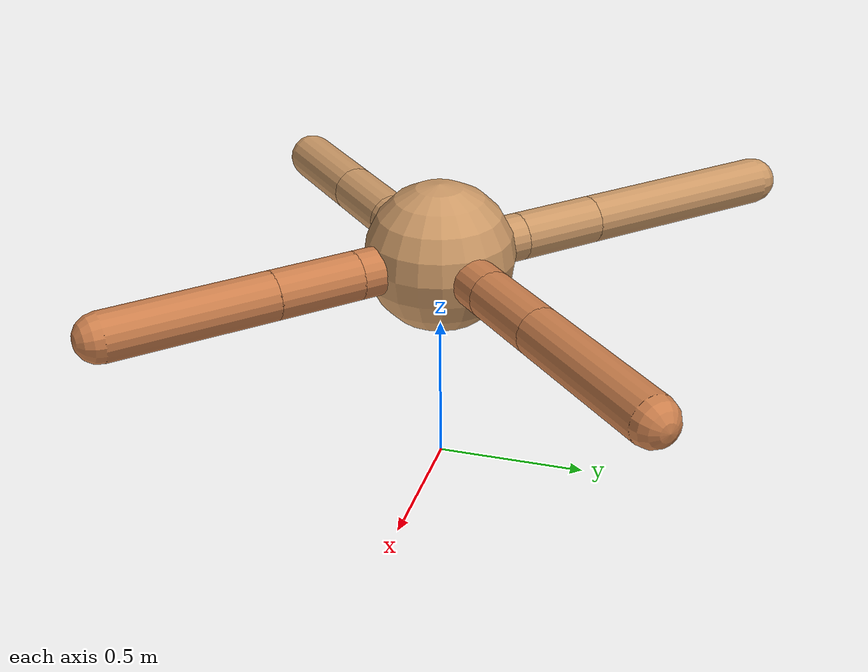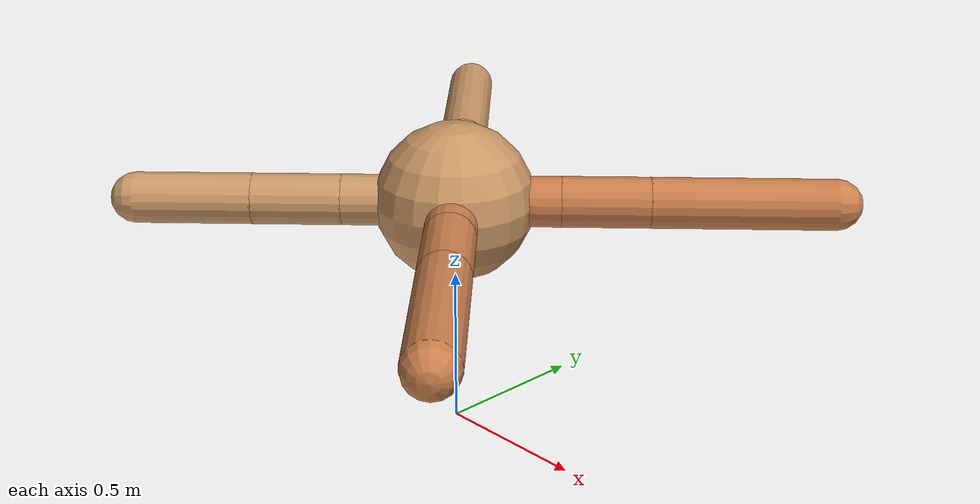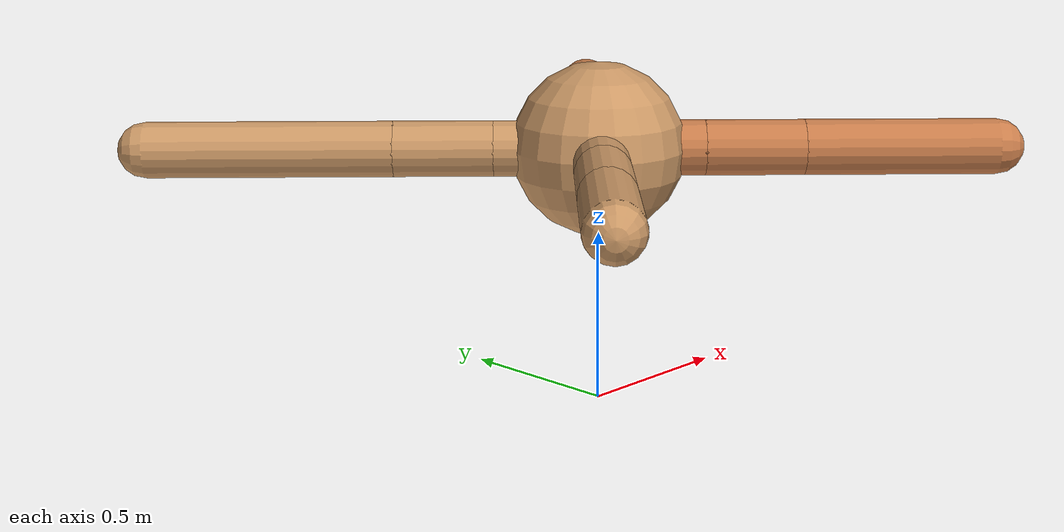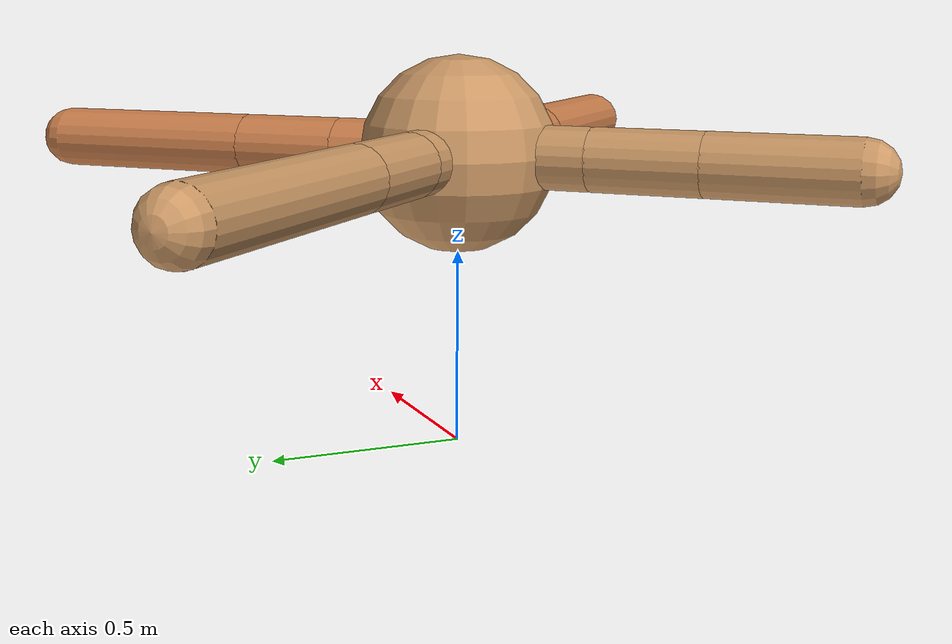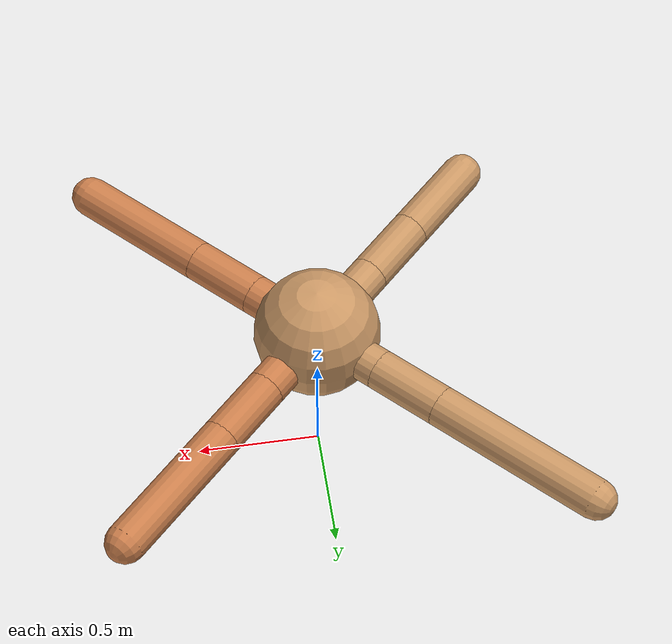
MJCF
<mujoco model="ant">
  <compiler angle="degree" coordinate="local" inertiafromgeom="true" />
  <option integrator="RK4" timestep="0.01" />
  <custom>
    <numeric data="0.0 0.0 0.55 1.0 0.0 0.0 0.0 0.0 1.0 0.0 -1.0 0.0 -1.0 0.0 1.0" name="init_qpos" />
  </custom>
  <default>
    <joint armature="1" damping="1" limited="true" />
    <geom conaffinity="0" condim="3" density="5.0" friction="1.5 0.1 0.1" margin="0.01" rgba="0.8 0.6 0.4 1" />
  </default>
  <worldbody>
    <body name="torso" pos="0 0 0.75">
      <geom name="torso_geom" pos="0 0 0" size="0.25" type="sphere" />

      <body name="front_left_leg" pos="0 0 0">
        <geom fromto="0.0 0.0 0.0 0.2336927871128403 0.2336927871128403 0.0" name="aux_1_geom" size="0.08" type="capsule" rgba=".8 .5 .3 1" />
        <body name="aux_1" pos="0.2336927871128403 0.2336927871128403 0.0">
          <joint axis="0 0 1" name="hip_1" pos="0.0 0.0 0.0" range="-40 40" type="hinge" />
          <geom fromto="0.0 0.0 0.0 0.1950455028914145 0.1950455028914145 0.0" name="left_leg_geom" size="0.08" type="capsule" rgba=".8 .5 .3 1" />
          <body pos="0.1950455028914145 0.1950455028914145 0.0" name="front_left_foot">
            <joint axis="-1 1 0" name="ankle_1" pos="0.0 0.0 0.0" range="30 100" type="hinge" />
            <geom fromto="0.0 0.0 0.0 0.40526340655103904 0.40526340655103904 0.0" name="left_ankle_geom" size="0.08" type="capsule" rgba=".8 .5 .3 1" />
          </body>
        </body>
      </body>
      <body name="front_right_leg" pos="0 0 0">
        <geom fromto="0.0 0.0 0.0 -0.21293554628785238 0.21293554628785238 0.0" name="aux_2_geom" size="0.08" type="capsule" />
        <body name="aux_2" pos="-0.21293554628785238 0.21293554628785238 0.0">
          <joint axis="0 0 1" name="hip_2" pos="0.0 0.0 0.0" range="-40 40" type="hinge" />
          <geom fromto="0.0 0.0 0.0 -0.20142083036353645 0.20142083036353645 0.0" name="right_leg_geom" size="0.08" type="capsule" />
          <body pos="-0.20142083036353645 0.20142083036353645 0.0" name="front_right_foot">
            <joint axis="1 1 0" name="ankle_2" pos="0.0 0.0 0.0" range="-100 -30" type="hinge" />
            <geom fromto="0.0 0.0 0.0 -0.49786892822900947 0.49786892822900947 0.0" name="right_ankle_geom" size="0.08" type="capsule" />
          </body>
        </body>
      </body>
      <body name="left_back_leg" pos="0 0 0">
        <geom fromto="0.0 0.0 0.0 -0.24763061849911072 -0.24763061849911072 0.0" name="aux_3_geom" size="0.08" type="capsule" />
        <body name="aux_3" pos="-0.24763061849911072 -0.24763061849911072 0.0">
          <joint axis="0 0 1" name="hip_3" pos="0.0 0.0 0.0" range="-40 40" type="hinge" />
          <geom fromto="0.0 0.0 0.0 -0.19669292145633174 -0.19669292145633174 0.0" name="back_leg_geom" size="0.08" type="capsule" />
          <body pos="-0.19669292145633174 -0.19669292145633174 0.0" name="left_back_foot">
            <joint axis="-1 1 0" name="ankle_3" pos="0.0 0.0 0.0" range="-100 -30" type="hinge" />
            <geom fromto="0.0 0.0 0.0 -0.2586212384409658 -0.2586212384409658 0.0" name="third_ankle_geom" size="0.08" type="capsule" />
          </body>
        </body>
      </body>
      <body name="right_back_leg" pos="0 0 0">
        <geom fromto="0.0 0.0 0.0 0.21569909129913745 -0.21569909129913745 0.0" name="aux_4_geom" size="0.08" type="capsule" rgba=".8 .5 .3 1" />
        <body name="aux_4" pos="0.21569909129913745 -0.21569909129913745 0.0">
          <joint axis="0 0 1" name="hip_4" pos="0.0 0.0 0.0" range="-40 40" type="hinge" />
          <geom fromto="0.0 0.0 0.0 0.2017486758550518 -0.2017486758550518 0.0" name="rightback_leg_geom" size="0.08" type="capsule" rgba=".8 .5 .3 1" />
          <body pos="0.2017486758550518 -0.2017486758550518 0.0" name="right_back_foot">
            <joint axis="1 1 0" name="ankle_4" pos="0.0 0.0 0.0" range="30 100" type="hinge" />
            <geom fromto="0.0 0.0 0.0 0.39245749537842145 -0.39245749537842145 0.0" name="fourth_ankle_geom" size="0.08" type="capsule" rgba=".8 .5 .3 1" />
          </body>
        </body>
      </body>
    </body>
  </worldbody>
  <actuator>
    <motor ctrllimited="true" ctrlrange="-1.0 1.0" joint="hip_4" gear="150" />
    <motor ctrllimited="true" ctrlrange="-1.0 1.0" joint="ankle_4" gear="150" />
    <motor ctrllimited="true" ctrlrange="-1.0 1.0" joint="hip_1" gear="150" />
    <motor ctrllimited="true" ctrlrange="-1.0 1.0" joint="ankle_1" gear="150" />
    <motor ctrllimited="true" ctrlrange="-1.0 1.0" joint="hip_2" gear="150" />
    <motor ctrllimited="true" ctrlrange="-1.0 1.0" joint="ankle_2" gear="150" />
    <motor ctrllimited="true" ctrlrange="-1.0 1.0" joint="hip_3" gear="150" />
    <motor ctrllimited="true" ctrlrange="-1.0 1.0" joint="ankle_3" gear="150" />
  </actuator>
</mujoco>
